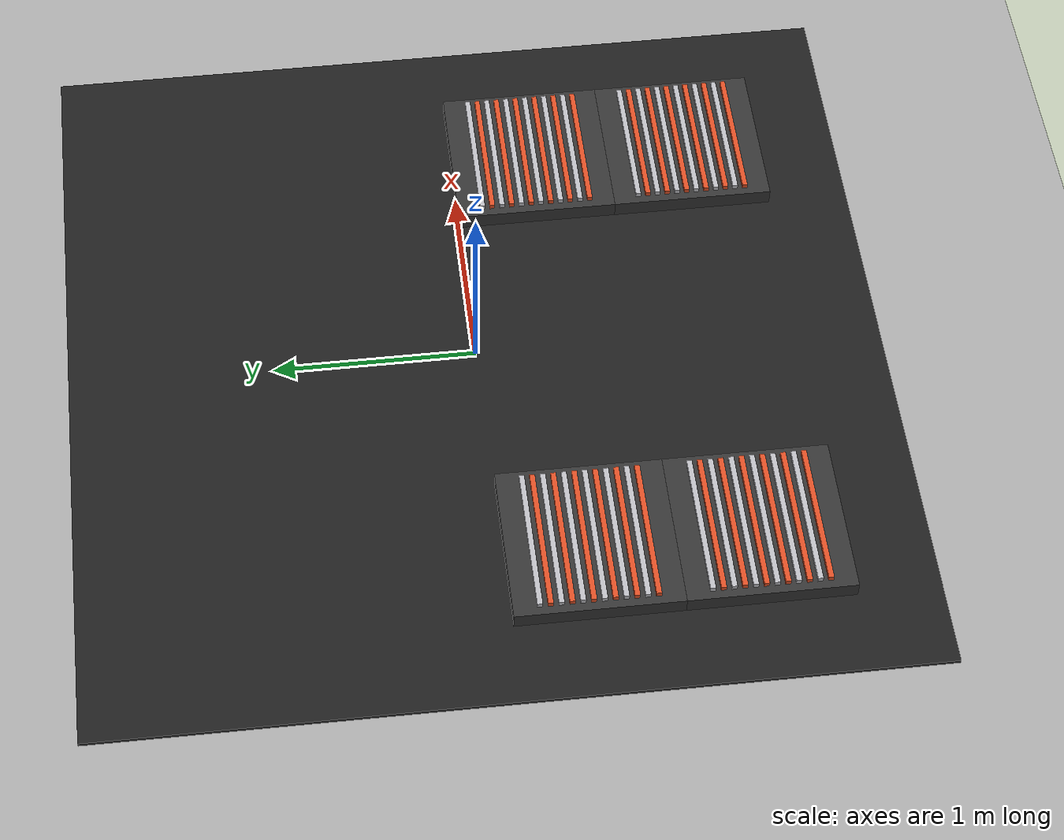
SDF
<sdf version="1.9">
 <world name="electrolysis_8_baths_world">
  <model name="ground_plane">
   <static>true</static>
   <link name="link">
    <collision name="collision">
     <geometry><plane><normal>0 0 1</normal><size>20 20</size></plane></geometry>
    </collision>
    <visual name="visual">
     <geometry><plane><normal>0 0 1</normal><size>20 20</size></plane></geometry>
     <material><ambient>0.65 0.65 0.65 1</ambient><diffuse>0.65 0.65 0.65 1</diffuse></material>
    </visual>
   </link>
  </model>
  <model name="polygon_floor">
   <static>true</static>
   <pose>0.0000 0.0000 0.0100 0 0 0</pose>
   <link name="link">
    <collision name="collision"><geometry><box><size>4.0000 4.0000 0.0200</size></box></geometry></collision>
    <visual name="visual">
     <geometry><box><size>4.0000 4.0000 0.0200</size></box></geometry>
     <material><ambient>0.12 0.12 0.12 1</ambient><diffuse>0.12 0.12 0.12 1</diffuse></material>
    </visual>
   </link>
  </model>
  <model name="bath_1">
   <static>true</static>
   <pose>-1.2000 -1.2000 0.0600 0 0 0</pose>
   <link name="link">
    <collision name="collision"><geometry><box><size>0.8000 0.8000 0.0800</size></box></geometry></collision>
    <visual name="visual">
     <geometry><box><size>0.8000 0.8000 0.0800</size></box></geometry>
     <material><ambient>0.20 0.20 0.20 1</ambient><diffuse>0.20 0.20 0.20 1</diffuse></material>
    </visual>
   </link>
  </model>
  <model name="bath_1_anode_01">
   <static>true</static>
   <pose>-1.2000 -1.4750 0.1125 0 0 0</pose>
   <link name="link">
    <collision name="collision"><geometry><box><size>0.7200 0.0250 0.0250</size></box></geometry></collision>
    <visual name="visual">
     <geometry><box><size>0.7200 0.0250 0.0250</size></box></geometry>
     <material><ambient>0.85 0.30 0.14 1</ambient><diffuse>0.85 0.30 0.14 1</diffuse></material>
    </visual>
   </link>
  </model>
  <model name="bath_1_cathode_02">
   <static>true</static>
   <pose>-1.2000 -1.4250 0.1125 0 0 0</pose>
   <link name="link">
    <collision name="collision"><geometry><box><size>0.7200 0.0250 0.0250</size></box></geometry></collision>
    <visual name="visual">
     <geometry><box><size>0.7200 0.0250 0.0250</size></box></geometry>
     <material><ambient>0.72 0.72 0.74 1</ambient><diffuse>0.72 0.72 0.74 1</diffuse></material>
    </visual>
   </link>
  </model>
  <model name="bath_1_anode_03">
   <static>true</static>
   <pose>-1.2000 -1.3750 0.1125 0 0 0</pose>
   <link name="link">
    <collision name="collision"><geometry><box><size>0.7200 0.0250 0.0250</size></box></geometry></collision>
    <visual name="visual">
     <geometry><box><size>0.7200 0.0250 0.0250</size></box></geometry>
     <material><ambient>0.85 0.30 0.14 1</ambient><diffuse>0.85 0.30 0.14 1</diffuse></material>
    </visual>
   </link>
  </model>
  <model name="bath_1_cathode_04">
   <static>true</static>
   <pose>-1.2000 -1.3250 0.1125 0 0 0</pose>
   <link name="link">
    <collision name="collision"><geometry><box><size>0.7200 0.0250 0.0250</size></box></geometry></collision>
    <visual name="visual">
     <geometry><box><size>0.7200 0.0250 0.0250</size></box></geometry>
     <material><ambient>0.72 0.72 0.74 1</ambient><diffuse>0.72 0.72 0.74 1</diffuse></material>
    </visual>
   </link>
  </model>
  <model name="bath_1_anode_05">
   <static>true</static>
   <pose>-1.2000 -1.2750 0.1125 0 0 0</pose>
   <link name="link">
    <collision name="collision"><geometry><box><size>0.7200 0.0250 0.0250</size></box></geometry></collision>
    <visual name="visual">
     <geometry><box><size>0.7200 0.0250 0.0250</size></box></geometry>
     <material><ambient>0.85 0.30 0.14 1</ambient><diffuse>0.85 0.30 0.14 1</diffuse></material>
    </visual>
   </link>
  </model>
  <model name="bath_1_cathode_06">
   <static>true</static>
   <pose>-1.2000 -1.2250 0.1125 0 0 0</pose>
   <link name="link">
    <collision name="collision"><geometry><box><size>0.7200 0.0250 0.0250</size></box></geometry></collision>
    <visual name="visual">
     <geometry><box><size>0.7200 0.0250 0.0250</size></box></geometry>
     <material><ambient>0.72 0.72 0.74 1</ambient><diffuse>0.72 0.72 0.74 1</diffuse></material>
    </visual>
   </link>
  </model>
  <model name="bath_1_anode_07">
   <static>true</static>
   <pose>-1.2000 -1.1750 0.1125 0 0 0</pose>
   <link name="link">
    <collision name="collision"><geometry><box><size>0.7200 0.0250 0.0250</size></box></geometry></collision>
    <visual name="visual">
     <geometry><box><size>0.7200 0.0250 0.0250</size></box></geometry>
     <material><ambient>0.85 0.30 0.14 1</ambient><diffuse>0.85 0.30 0.14 1</diffuse></material>
    </visual>
   </link>
  </model>
  <model name="bath_1_cathode_08">
   <static>true</static>
   <pose>-1.2000 -1.1250 0.1125 0 0 0</pose>
   <link name="link">
    <collision name="collision"><geometry><box><size>0.7200 0.0250 0.0250</size></box></geometry></collision>
    <visual name="visual">
     <geometry><box><size>0.7200 0.0250 0.0250</size></box></geometry>
     <material><ambient>0.72 0.72 0.74 1</ambient><diffuse>0.72 0.72 0.74 1</diffuse></material>
    </visual>
   </link>
  </model>
  <model name="bath_1_anode_09">
   <static>true</static>
   <pose>-1.2000 -1.0750 0.1125 0 0 0</pose>
   <link name="link">
    <collision name="collision"><geometry><box><size>0.7200 0.0250 0.0250</size></box></geometry></collision>
    <visual name="visual">
     <geometry><box><size>0.7200 0.0250 0.0250</size></box></geometry>
     <material><ambient>0.85 0.30 0.14 1</ambient><diffuse>0.85 0.30 0.14 1</diffuse></material>
    </visual>
   </link>
  </model>
  <model name="bath_1_cathode_10">
   <static>true</static>
   <pose>-1.2000 -1.0250 0.1125 0 0 0</pose>
   <link name="link">
    <collision name="collision"><geometry><box><size>0.7200 0.0250 0.0250</size></box></geometry></collision>
    <visual name="visual">
     <geometry><box><size>0.7200 0.0250 0.0250</size></box></geometry>
     <material><ambient>0.72 0.72 0.74 1</ambient><diffuse>0.72 0.72 0.74 1</diffuse></material>
    </visual>
   </link>
  </model>
  <model name="bath_1_anode_11">
   <static>true</static>
   <pose>-1.2000 -0.9750 0.1125 0 0 0</pose>
   <link name="link">
    <collision name="collision"><geometry><box><size>0.7200 0.0250 0.0250</size></box></geometry></collision>
    <visual name="visual">
     <geometry><box><size>0.7200 0.0250 0.0250</size></box></geometry>
     <material><ambient>0.85 0.30 0.14 1</ambient><diffuse>0.85 0.30 0.14 1</diffuse></material>
    </visual>
   </link>
  </model>
  <model name="bath_1_cathode_12">
   <static>true</static>
   <pose>-1.2000 -0.9250 0.1125 0 0 0</pose>
   <link name="link">
    <collision name="collision"><geometry><box><size>0.7200 0.0250 0.0250</size></box></geometry></collision>
    <visual name="visual">
     <geometry><box><size>0.7200 0.0250 0.0250</size></box></geometry>
     <material><ambient>0.72 0.72 0.74 1</ambient><diffuse>0.72 0.72 0.74 1</diffuse></material>
    </visual>
   </link>
  </model>
  <model name="bath_2">
   <static>true</static>
   <pose>-1.2000 -0.4000 0.0600 0 0 0</pose>
   <link name="link">
    <collision name="collision"><geometry><box><size>0.8000 0.8000 0.0800</size></box></geometry></collision>
    <visual name="visual">
     <geometry><box><size>0.8000 0.8000 0.0800</size></box></geometry>
     <material><ambient>0.20 0.20 0.20 1</ambient><diffuse>0.20 0.20 0.20 1</diffuse></material>
    </visual>
   </link>
  </model>
  <model name="bath_2_anode_01">
   <static>true</static>
   <pose>-1.2000 -0.6750 0.1125 0 0 0</pose>
   <link name="link">
    <collision name="collision"><geometry><box><size>0.7200 0.0250 0.0250</size></box></geometry></collision>
    <visual name="visual">
     <geometry><box><size>0.7200 0.0250 0.0250</size></box></geometry>
     <material><ambient>0.85 0.30 0.14 1</ambient><diffuse>0.85 0.30 0.14 1</diffuse></material>
    </visual>
   </link>
  </model>
  <model name="bath_2_cathode_02">
   <static>true</static>
   <pose>-1.2000 -0.6250 0.1125 0 0 0</pose>
   <link name="link">
    <collision name="collision"><geometry><box><size>0.7200 0.0250 0.0250</size></box></geometry></collision>
    <visual name="visual">
     <geometry><box><size>0.7200 0.0250 0.0250</size></box></geometry>
     <material><ambient>0.72 0.72 0.74 1</ambient><diffuse>0.72 0.72 0.74 1</diffuse></material>
    </visual>
   </link>
  </model>
  <model name="bath_2_anode_03">
   <static>true</static>
   <pose>-1.2000 -0.5750 0.1125 0 0 0</pose>
   <link name="link">
    <collision name="collision"><geometry><box><size>0.7200 0.0250 0.0250</size></box></geometry></collision>
    <visual name="visual">
     <geometry><box><size>0.7200 0.0250 0.0250</size></box></geometry>
     <material><ambient>0.85 0.30 0.14 1</ambient><diffuse>0.85 0.30 0.14 1</diffuse></material>
    </visual>
   </link>
  </model>
  <model name="bath_2_cathode_04">
   <static>true</static>
   <pose>-1.2000 -0.5250 0.1125 0 0 0</pose>
   <link name="link">
    <collision name="collision"><geometry><box><size>0.7200 0.0250 0.0250</size></box></geometry></collision>
    <visual name="visual">
     <geometry><box><size>0.7200 0.0250 0.0250</size></box></geometry>
     <material><ambient>0.72 0.72 0.74 1</ambient><diffuse>0.72 0.72 0.74 1</diffuse></material>
    </visual>
   </link>
  </model>
  <model name="bath_2_anode_05">
   <static>true</static>
   <pose>-1.2000 -0.4750 0.1125 0 0 0</pose>
   <link name="link">
    <collision name="collision"><geometry><box><size>0.7200 0.0250 0.0250</size></box></geometry></collision>
    <visual name="visual">
     <geometry><box><size>0.7200 0.0250 0.0250</size></box></geometry>
     <material><ambient>0.85 0.30 0.14 1</ambient><diffuse>0.85 0.30 0.14 1</diffuse></material>
    </visual>
   </link>
  </model>
  <model name="bath_2_cathode_06">
   <static>true</static>
   <pose>-1.2000 -0.4250 0.1125 0 0 0</pose>
   <link name="link">
    <collision name="collision"><geometry><box><size>0.7200 0.0250 0.0250</size></box></geometry></collision>
    <visual name="visual">
     <geometry><box><size>0.7200 0.0250 0.0250</size></box></geometry>
     <material><ambient>0.72 0.72 0.74 1</ambient><diffuse>0.72 0.72 0.74 1</diffuse></material>
    </visual>
   </link>
  </model>
  <model name="bath_2_anode_07">
   <static>true</static>
   <pose>-1.2000 -0.3750 0.1125 0 0 0</pose>
   <link name="link">
    <collision name="collision"><geometry><box><size>0.7200 0.0250 0.0250</size></box></geometry></collision>
    <visual name="visual">
     <geometry><box><size>0.7200 0.0250 0.0250</size></box></geometry>
     <material><ambient>0.85 0.30 0.14 1</ambient><diffuse>0.85 0.30 0.14 1</diffuse></material>
    </visual>
   </link>
  </model>
  <model name="bath_2_cathode_08">
   <static>true</static>
   <pose>-1.2000 -0.3250 0.1125 0 0 0</pose>
   <link name="link">
    <collision name="collision"><geometry><box><size>0.7200 0.0250 0.0250</size></box></geometry></collision>
    <visual name="visual">
     <geometry><box><size>0.7200 0.0250 0.0250</size></box></geometry>
     <material><ambient>0.72 0.72 0.74 1</ambient><diffuse>0.72 0.72 0.74 1</diffuse></material>
    </visual>
   </link>
  </model>
  <model name="bath_2_anode_09">
   <static>true</static>
   <pose>-1.2000 -0.2750 0.1125 0 0 0</pose>
   <link name="link">
    <collision name="collision"><geometry><box><size>0.7200 0.0250 0.0250</size></box></geometry></collision>
    <visual name="visual">
     <geometry><box><size>0.7200 0.0250 0.0250</size></box></geometry>
     <material><ambient>0.85 0.30 0.14 1</ambient><diffuse>0.85 0.30 0.14 1</diffuse></material>
    </visual>
   </link>
  </model>
  <model name="bath_2_cathode_10">
   <static>true</static>
   <pose>-1.2000 -0.2250 0.1125 0 0 0</pose>
   <link name="link">
    <collision name="collision"><geometry><box><size>0.7200 0.0250 0.0250</size></box></geometry></collision>
    <visual name="visual">
     <geometry><box><size>0.7200 0.0250 0.0250</size></box></geometry>
     <material><ambient>0.72 0.72 0.74 1</ambient><diffuse>0.72 0.72 0.74 1</diffuse></material>
    </visual>
   </link>
  </model>
  <model name="bath_2_anode_11">
   <static>true</static>
   <pose>-1.2000 -0.1750 0.1125 0 0 0</pose>
   <link name="link">
    <collision name="collision"><geometry><box><size>0.7200 0.0250 0.0250</size></box></geometry></collision>
    <visual name="visual">
     <geometry><box><size>0.7200 0.0250 0.0250</size></box></geometry>
     <material><ambient>0.85 0.30 0.14 1</ambient><diffuse>0.85 0.30 0.14 1</diffuse></material>
    </visual>
   </link>
  </model>
  <model name="bath_2_cathode_12">
   <static>true</static>
   <pose>-1.2000 -0.1250 0.1125 0 0 0</pose>
   <link name="link">
    <collision name="collision"><geometry><box><size>0.7200 0.0250 0.0250</size></box></geometry></collision>
    <visual name="visual">
     <geometry><box><size>0.7200 0.0250 0.0250</size></box></geometry>
     <material><ambient>0.72 0.72 0.74 1</ambient><diffuse>0.72 0.72 0.74 1</diffuse></material>
    </visual>
   </link>
  </model>
  <model name="bath_5">
   <static>true</static>
   <pose>1.2000 -1.2000 0.0600 0 0 0</pose>
   <link name="link">
    <collision name="collision"><geometry><box><size>0.8000 0.8000 0.0800</size></box></geometry></collision>
    <visual name="visual">
     <geometry><box><size>0.8000 0.8000 0.0800</size></box></geometry>
     <material><ambient>0.20 0.20 0.20 1</ambient><diffuse>0.20 0.20 0.20 1</diffuse></material>
    </visual>
   </link>
  </model>
  <model name="bath_5_anode_01">
   <static>true</static>
   <pose>1.2000 -1.4750 0.1125 0 0 0</pose>
   <link name="link">
    <collision name="collision"><geometry><box><size>0.7200 0.0250 0.0250</size></box></geometry></collision>
    <visual name="visual">
     <geometry><box><size>0.7200 0.0250 0.0250</size></box></geometry>
     <material><ambient>0.85 0.30 0.14 1</ambient><diffuse>0.85 0.30 0.14 1</diffuse></material>
    </visual>
   </link>
  </model>
  <model name="bath_5_cathode_02">
   <static>true</static>
   <pose>1.2000 -1.4250 0.1125 0 0 0</pose>
   <link name="link">
    <collision name="collision"><geometry><box><size>0.7200 0.0250 0.0250</size></box></geometry></collision>
    <visual name="visual">
     <geometry><box><size>0.7200 0.0250 0.0250</size></box></geometry>
     <material><ambient>0.72 0.72 0.74 1</ambient><diffuse>0.72 0.72 0.74 1</diffuse></material>
    </visual>
   </link>
  </model>
  <model name="bath_5_anode_03">
   <static>true</static>
   <pose>1.2000 -1.3750 0.1125 0 0 0</pose>
   <link name="link">
    <collision name="collision"><geometry><box><size>0.7200 0.0250 0.0250</size></box></geometry></collision>
    <visual name="visual">
     <geometry><box><size>0.7200 0.0250 0.0250</size></box></geometry>
     <material><ambient>0.85 0.30 0.14 1</ambient><diffuse>0.85 0.30 0.14 1</diffuse></material>
    </visual>
   </link>
  </model>
  <model name="bath_5_cathode_04">
   <static>true</static>
   <pose>1.2000 -1.3250 0.1125 0 0 0</pose>
   <link name="link">
    <collision name="collision"><geometry><box><size>0.7200 0.0250 0.0250</size></box></geometry></collision>
    <visual name="visual">
     <geometry><box><size>0.7200 0.0250 0.0250</size></box></geometry>
     <material><ambient>0.72 0.72 0.74 1</ambient><diffuse>0.72 0.72 0.74 1</diffuse></material>
    </visual>
   </link>
  </model>
  <model name="bath_5_anode_05">
   <static>true</static>
   <pose>1.2000 -1.2750 0.1125 0 0 0</pose>
   <link name="link">
    <collision name="collision"><geometry><box><size>0.7200 0.0250 0.0250</size></box></geometry></collision>
    <visual name="visual">
     <geometry><box><size>0.7200 0.0250 0.0250</size></box></geometry>
     <material><ambient>0.85 0.30 0.14 1</ambient><diffuse>0.85 0.30 0.14 1</diffuse></material>
    </visual>
   </link>
  </model>
  <model name="bath_5_cathode_06">
   <static>true</static>
   <pose>1.2000 -1.2250 0.1125 0 0 0</pose>
   <link name="link">
    <collision name="collision"><geometry><box><size>0.7200 0.0250 0.0250</size></box></geometry></collision>
    <visual name="visual">
     <geometry><box><size>0.7200 0.0250 0.0250</size></box></geometry>
     <material><ambient>0.72 0.72 0.74 1</ambient><diffuse>0.72 0.72 0.74 1</diffuse></material>
    </visual>
   </link>
  </model>
  <model name="bath_5_anode_07">
   <static>true</static>
   <pose>1.2000 -1.1750 0.1125 0 0 0</pose>
   <link name="link">
    <collision name="collision"><geometry><box><size>0.7200 0.0250 0.0250</size></box></geometry></collision>
    <visual name="visual">
     <geometry><box><size>0.7200 0.0250 0.0250</size></box></geometry>
     <material><ambient>0.85 0.30 0.14 1</ambient><diffuse>0.85 0.30 0.14 1</diffuse></material>
    </visual>
   </link>
  </model>
  <model name="bath_5_cathode_08">
   <static>true</static>
   <pose>1.2000 -1.1250 0.1125 0 0 0</pose>
   <link name="link">
    <collision name="collision"><geometry><box><size>0.7200 0.0250 0.0250</size></box></geometry></collision>
    <visual name="visual">
     <geometry><box><size>0.7200 0.0250 0.0250</size></box></geometry>
     <material><ambient>0.72 0.72 0.74 1</ambient><diffuse>0.72 0.72 0.74 1</diffuse></material>
    </visual>
   </link>
  </model>
  <model name="bath_5_anode_09">
   <static>true</static>
   <pose>1.2000 -1.0750 0.1125 0 0 0</pose>
   <link name="link">
    <collision name="collision"><geometry><box><size>0.7200 0.0250 0.0250</size></box></geometry></collision>
    <visual name="visual">
     <geometry><box><size>0.7200 0.0250 0.0250</size></box></geometry>
     <material><ambient>0.85 0.30 0.14 1</ambient><diffuse>0.85 0.30 0.14 1</diffuse></material>
    </visual>
   </link>
  </model>
  <model name="bath_5_cathode_10">
   <static>true</static>
   <pose>1.2000 -1.0250 0.1125 0 0 0</pose>
   <link name="link">
    <collision name="collision"><geometry><box><size>0.7200 0.0250 0.0250</size></box></geometry></collision>
    <visual name="visual">
     <geometry><box><size>0.7200 0.0250 0.0250</size></box></geometry>
     <material><ambient>0.72 0.72 0.74 1</ambient><diffuse>0.72 0.72 0.74 1</diffuse></material>
    </visual>
   </link>
  </model>
  <model name="bath_5_anode_11">
   <static>true</static>
   <pose>1.2000 -0.9750 0.1125 0 0 0</pose>
   <link name="link">
    <collision name="collision"><geometry><box><size>0.7200 0.0250 0.0250</size></box></geometry></collision>
    <visual name="visual">
     <geometry><box><size>0.7200 0.0250 0.0250</size></box></geometry>
     <material><ambient>0.85 0.30 0.14 1</ambient><diffuse>0.85 0.30 0.14 1</diffuse></material>
    </visual>
   </link>
  </model>
  <model name="bath_5_cathode_12">
   <static>true</static>
   <pose>1.2000 -0.9250 0.1125 0 0 0</pose>
   <link name="link">
    <collision name="collision"><geometry><box><size>0.7200 0.0250 0.0250</size></box></geometry></collision>
    <visual name="visual">
     <geometry><box><size>0.7200 0.0250 0.0250</size></box></geometry>
     <material><ambient>0.72 0.72 0.74 1</ambient><diffuse>0.72 0.72 0.74 1</diffuse></material>
    </visual>
   </link>
  </model>
  <model name="bath_6">
   <static>true</static>
   <pose>1.2000 -0.4000 0.0600 0 0 0</pose>
   <link name="link">
    <collision name="collision"><geometry><box><size>0.8000 0.8000 0.0800</size></box></geometry></collision>
    <visual name="visual">
     <geometry><box><size>0.8000 0.8000 0.0800</size></box></geometry>
     <material><ambient>0.20 0.20 0.20 1</ambient><diffuse>0.20 0.20 0.20 1</diffuse></material>
    </visual>
   </link>
  </model>
  <model name="bath_6_anode_01">
   <static>true</static>
   <pose>1.2000 -0.6750 0.1125 0 0 0</pose>
   <link name="link">
    <collision name="collision"><geometry><box><size>0.7200 0.0250 0.0250</size></box></geometry></collision>
    <visual name="visual">
     <geometry><box><size>0.7200 0.0250 0.0250</size></box></geometry>
     <material><ambient>0.85 0.30 0.14 1</ambient><diffuse>0.85 0.30 0.14 1</diffuse></material>
    </visual>
   </link>
  </model>
  <model name="bath_6_cathode_02">
   <static>true</static>
   <pose>1.2000 -0.6250 0.1125 0 0 0</pose>
   <link name="link">
    <collision name="collision"><geometry><box><size>0.7200 0.0250 0.0250</size></box></geometry></collision>
    <visual name="visual">
     <geometry><box><size>0.7200 0.0250 0.0250</size></box></geometry>
     <material><ambient>0.72 0.72 0.74 1</ambient><diffuse>0.72 0.72 0.74 1</diffuse></material>
    </visual>
   </link>
  </model>
  <model name="bath_6_anode_03">
   <static>true</static>
   <pose>1.2000 -0.5750 0.1125 0 0 0</pose>
   <link name="link">
    <collision name="collision"><geometry><box><size>0.7200 0.0250 0.0250</size></box></geometry></collision>
    <visual name="visual">
     <geometry><box><size>0.7200 0.0250 0.0250</size></box></geometry>
     <material><ambient>0.85 0.30 0.14 1</ambient><diffuse>0.85 0.30 0.14 1</diffuse></material>
    </visual>
   </link>
  </model>
  <model name="bath_6_cathode_04">
   <static>true</static>
   <pose>1.2000 -0.5250 0.1125 0 0 0</pose>
   <link name="link">
    <collision name="collision"><geometry><box><size>0.7200 0.0250 0.0250</size></box></geometry></collision>
    <visual name="visual">
     <geometry><box><size>0.7200 0.0250 0.0250</size></box></geometry>
     <material><ambient>0.72 0.72 0.74 1</ambient><diffuse>0.72 0.72 0.74 1</diffuse></material>
    </visual>
   </link>
  </model>
  <model name="bath_6_anode_05">
   <static>true</static>
   <pose>1.2000 -0.4750 0.1125 0 0 0</pose>
   <link name="link">
    <collision name="collision"><geometry><box><size>0.7200 0.0250 0.0250</size></box></geometry></collision>
    <visual name="visual">
     <geometry><box><size>0.7200 0.0250 0.0250</size></box></geometry>
     <material><ambient>0.85 0.30 0.14 1</ambient><diffuse>0.85 0.30 0.14 1</diffuse></material>
    </visual>
   </link>
  </model>
  <model name="bath_6_cathode_06">
   <static>true</static>
   <pose>1.2000 -0.4250 0.1125 0 0 0</pose>
   <link name="link">
    <collision name="collision"><geometry><box><size>0.7200 0.0250 0.0250</size></box></geometry></collision>
    <visual name="visual">
     <geometry><box><size>0.7200 0.0250 0.0250</size></box></geometry>
     <material><ambient>0.72 0.72 0.74 1</ambient><diffuse>0.72 0.72 0.74 1</diffuse></material>
    </visual>
   </link>
  </model>
  <model name="bath_6_anode_07">
   <static>true</static>
   <pose>1.2000 -0.3750 0.1125 0 0 0</pose>
   <link name="link">
    <collision name="collision"><geometry><box><size>0.7200 0.0250 0.0250</size></box></geometry></collision>
    <visual name="visual">
     <geometry><box><size>0.7200 0.0250 0.0250</size></box></geometry>
     <material><ambient>0.85 0.30 0.14 1</ambient><diffuse>0.85 0.30 0.14 1</diffuse></material>
    </visual>
   </link>
  </model>
  <model name="bath_6_cathode_08">
   <static>true</static>
   <pose>1.2000 -0.3250 0.1125 0 0 0</pose>
   <link name="link">
    <collision name="collision"><geometry><box><size>0.7200 0.0250 0.0250</size></box></geometry></collision>
    <visual name="visual">
     <geometry><box><size>0.7200 0.0250 0.0250</size></box></geometry>
     <material><ambient>0.72 0.72 0.74 1</ambient><diffuse>0.72 0.72 0.74 1</diffuse></material>
    </visual>
   </link>
  </model>
  <model name="bath_6_anode_09">
   <static>true</static>
   <pose>1.2000 -0.2750 0.1125 0 0 0</pose>
   <link name="link">
    <collision name="collision"><geometry><box><size>0.7200 0.0250 0.0250</size></box></geometry></collision>
    <visual name="visual">
     <geometry><box><size>0.7200 0.0250 0.0250</size></box></geometry>
     <material><ambient>0.85 0.30 0.14 1</ambient><diffuse>0.85 0.30 0.14 1</diffuse></material>
    </visual>
   </link>
  </model>
  <model name="bath_6_cathode_10">
   <static>true</static>
   <pose>1.2000 -0.2250 0.1125 0 0 0</pose>
   <link name="link">
    <collision name="collision"><geometry><box><size>0.7200 0.0250 0.0250</size></box></geometry></collision>
    <visual name="visual">
     <geometry><box><size>0.7200 0.0250 0.0250</size></box></geometry>
     <material><ambient>0.72 0.72 0.74 1</ambient><diffuse>0.72 0.72 0.74 1</diffuse></material>
    </visual>
   </link>
  </model>
  <model name="bath_6_anode_11">
   <static>true</static>
   <pose>1.2000 -0.1750 0.1125 0 0 0</pose>
   <link name="link">
    <collision name="collision"><geometry><box><size>0.7200 0.0250 0.0250</size></box></geometry></collision>
    <visual name="visual">
     <geometry><box><size>0.7200 0.0250 0.0250</size></box></geometry>
     <material><ambient>0.85 0.30 0.14 1</ambient><diffuse>0.85 0.30 0.14 1</diffuse></material>
    </visual>
   </link>
  </model>
  <model name="bath_6_cathode_12">
   <static>true</static>
   <pose>1.2000 -0.1250 0.1125 0 0 0</pose>
   <link name="link">
    <collision name="collision"><geometry><box><size>0.7200 0.0250 0.0250</size></box></geometry></collision>
    <visual name="visual">
     <geometry><box><size>0.7200 0.0250 0.0250</size></box></geometry>
     <material><ambient>0.72 0.72 0.74 1</ambient><diffuse>0.72 0.72 0.74 1</diffuse></material>
    </visual>
   </link>
  </model>
 </world>
</sdf>
